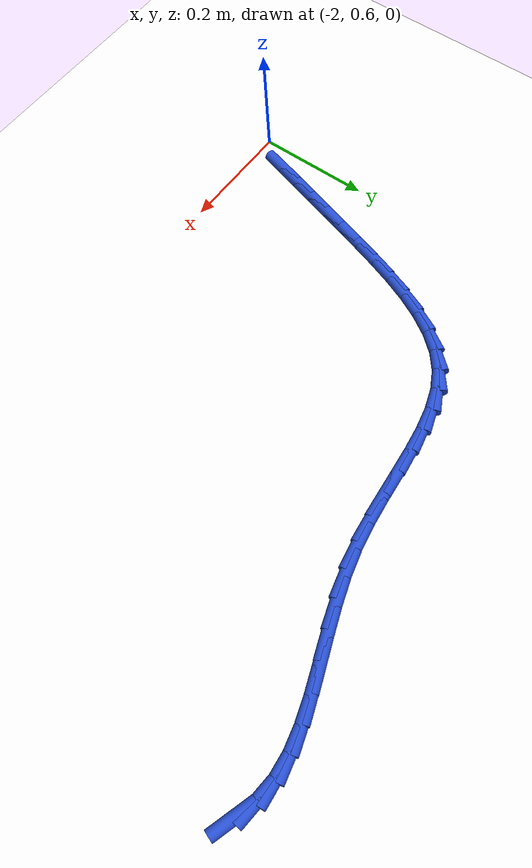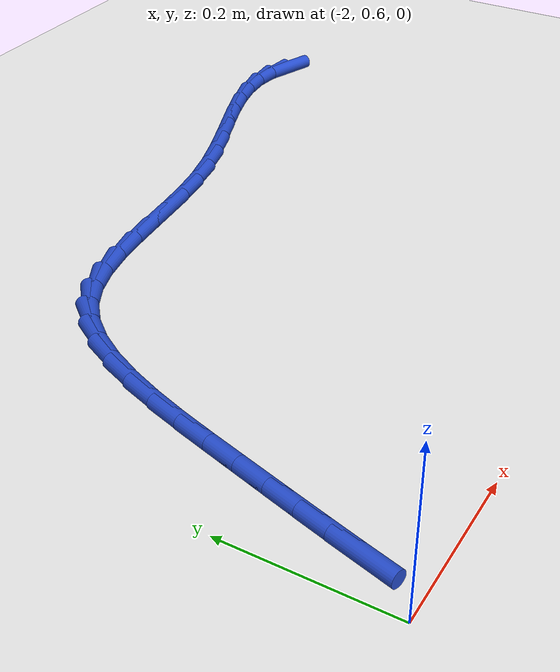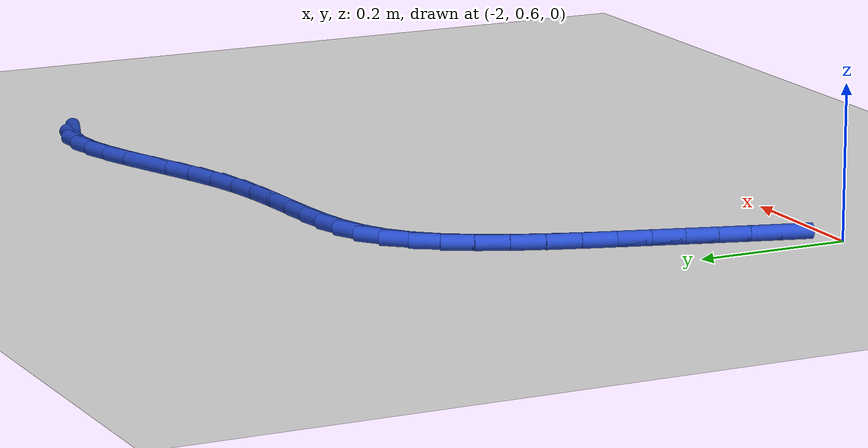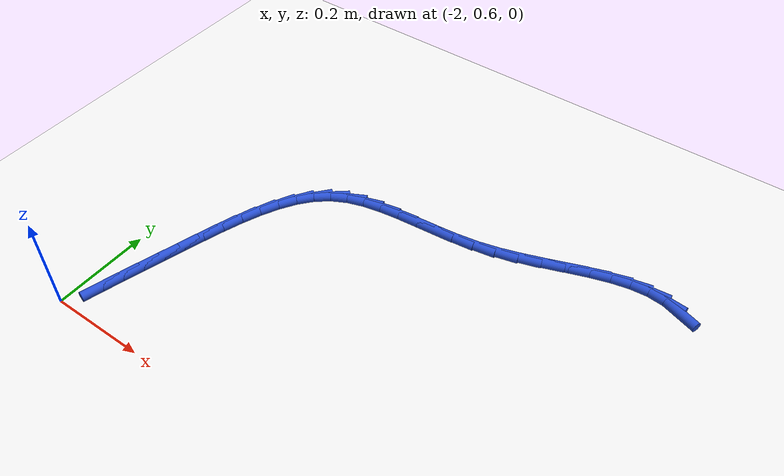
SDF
<sdf version="1.6">
 <world name="default">
  <model name="ground_plane">
   <static>1</static>
   <link name="link">
    <collision name="collision">
     <geometry><plane><normal>0 0 1</normal><size>100 100</size></plane></geometry>
     <surface><friction><ode><mu>100</mu><mu2>50</mu2></ode></friction></surface>
    </collision>
    <visual name="visual">
     <cast_shadows>0</cast_shadows>
     <geometry><plane><normal>0 0 1</normal><size>100 100</size></plane></geometry>
     <material>
      <script><uri>file://media/materials/scripts/gazebo.material</uri><name>Gazebo/WhiteGlow</name></script>
     </material>
    </visual>
   </link>
  </model>
  <model name="line">
   <link name="link_45">
    <pose>-1.0591299021761929 1.250692439277782 0.01 0 1.57 -0.33669822958910356</pose>
    <collision name="collision">
     <geometry><cylinder><radius>0.01</radius><length>0.08</length></cylinder></geometry>
    </collision>
    <visual name="visual">
     <material>
      <script><name>Gazebo/Blue</name><uri>file://media/materials/scripts/gazebo.material</uri></script>
     </material>
     <geometry><cylinder><radius>0.01</radius><length>0.08</length></cylinder></geometry>
    </visual>
   </link>
   <link name="link_46">
    <pose>-1.0915551283535128 1.2620421205153682 0.01 0 1.57 -0.10427068698773985</pose>
    <collision name="collision">
     <geometry><cylinder><radius>0.01</radius><length>0.08</length></cylinder></geometry>
    </collision>
    <visual name="visual">
     <material>
      <script><name>Gazebo/Blue</name><uri>file://media/materials/scripts/gazebo.material</uri></script>
     </material>
     <geometry><cylinder><radius>0.01</radius><length>0.08</length></cylinder></geometry>
    </visual>
   </link>
   <link name="link_47">
    <pose>-1.1257657190127353 1.2656222666183277 0.01 0 1.57 0.08414568604706085</pose>
    <collision name="collision">
     <geometry><cylinder><radius>0.01</radius><length>0.08</length></cylinder></geometry>
    </collision>
    <visual name="visual">
     <material>
      <script><name>Gazebo/Blue</name><uri>file://media/materials/scripts/gazebo.material</uri></script>
     </material>
     <geometry><cylinder><radius>0.01</radius><length>0.08</length></cylinder></geometry>
    </visual>
   </link>
   <link name="link_48">
    <pose>-1.1616599783034802 1.2625947707788077 0.01 0 1.57 0.21693622017412617</pose>
    <collision name="collision">
     <geometry><cylinder><radius>0.01</radius><length>0.08</length></cylinder></geometry>
    </collision>
    <visual name="visual">
     <material>
      <script><name>Gazebo/Blue</name><uri>file://media/materials/scripts/gazebo.material</uri></script>
     </material>
     <geometry><cylinder><radius>0.01</radius><length>0.08</length></cylinder></geometry>
    </visual>
   </link>
   <link name="link_49">
    <pose>-1.1990952887892572 1.2543438551020984 0.01 0 1.57 0.3018186956501924</pose>
    <collision name="collision">
     <geometry><cylinder><radius>0.01</radius><length>0.08</length></cylinder></geometry>
    </collision>
    <visual name="visual">
     <material>
      <script><name>Gazebo/Blue</name><uri>file://media/materials/scripts/gazebo.material</uri></script>
     </material>
     <geometry><cylinder><radius>0.01</radius><length>0.08</length></cylinder></geometry>
    </visual>
   </link>
   <link name="link_50">
    <pose>-1.2379290330335748 1.2422537416934891 0.01 0 1.57 0.34804526673265695</pose>
    <collision name="collision">
     <geometry><cylinder><radius>0.01</radius><length>0.08</length></cylinder></geometry>
    </collision>
    <visual name="visual">
     <material>
      <script><name>Gazebo/Blue</name><uri>file://media/materials/scripts/gazebo.material</uri></script>
     </material>
     <geometry><cylinder><radius>0.01</radius><length>0.08</length></cylinder></geometry>
    </visual>
   </link>
   <link name="link_51">
    <pose>-1.2780185935999442 1.2277086526582692 0.01 0 1.57 0.36227283005892513</pose>
    <collision name="collision">
     <geometry><cylinder><radius>0.01</radius><length>0.08</length></cylinder></geometry>
    </collision>
    <visual name="visual">
     <material>
      <script><name>Gazebo/Blue</name><uri>file://media/materials/scripts/gazebo.material</uri></script>
     </material>
     <geometry><cylinder><radius>0.01</radius><length>0.08</length></cylinder></geometry>
    </visual>
   </link>
   <link name="link_52">
    <pose>-1.3192213530518744 1.2120928101017288 0.01 0 1.57 0.3480716349226639</pose>
    <collision name="collision">
     <geometry><cylinder><radius>0.01</radius><length>0.08</length></cylinder></geometry>
    </collision>
    <visual name="visual">
     <material>
      <script><name>Gazebo/Blue</name><uri>file://media/materials/scripts/gazebo.material</uri></script>
     </material>
     <geometry><cylinder><radius>0.01</radius><length>0.08</length></cylinder></geometry>
    </visual>
   </link>
   <link name="link_53">
    <pose>-1.3613946939528738 1.1967904361291561 0.01 0 1.57 0.3064142870911959</pose>
    <collision name="collision">
     <geometry><cylinder><radius>0.01</radius><length>0.08</length></cylinder></geometry>
    </collision>
    <visual name="visual">
     <material>
      <script><name>Gazebo/Blue</name><uri>file://media/materials/scripts/gazebo.material</uri></script>
     </material>
     <geometry><cylinder><radius>0.01</radius><length>0.08</length></cylinder></geometry>
    </visual>
   </link>
   <link name="link_54">
    <pose>-1.4043959988664527 1.1831857528458418 0.01 0 1.57 0.23663826849893943</pose>
    <collision name="collision">
     <geometry><cylinder><radius>0.01</radius><length>0.08</length></cylinder></geometry>
    </collision>
    <visual name="visual">
     <material>
      <script><name>Gazebo/Blue</name><uri>file://media/materials/scripts/gazebo.material</uri></script>
     </material>
     <geometry><cylinder><radius>0.01</radius><length>0.08</length></cylinder></geometry>
    </visual>
   </link>
   <link name="link_55">
    <pose>-1.4480807611923703 1.1726508856167719 0.01 0 1.57 0.1578664580977036</pose>
    <collision name="collision">
     <geometry><cylinder><radius>0.01</radius><length>0.08</length></cylinder></geometry>
    </collision>
    <visual name="visual">
     <material>
      <script><name>Gazebo/Blue</name><uri>file://media/materials/scripts/gazebo.material</uri></script>
     </material>
     <geometry><cylinder><radius>0.01</radius><length>0.08</length></cylinder></geometry>
    </visual>
   </link>
   <link name="link_56">
    <pose>-1.4921601531029245 1.1656338385351133 0.01 0 1.57 0.10455293039260276</pose>
    <collision name="collision">
     <geometry><cylinder><radius>0.01</radius><length>0.08</length></cylinder></geometry>
    </collision>
    <visual name="visual">
     <material>
      <script><name>Gazebo/Blue</name><uri>file://media/materials/scripts/gazebo.material</uri></script>
     </material>
     <geometry><cylinder><radius>0.01</radius><length>0.08</length></cylinder></geometry>
    </visual>
   </link>
   <link name="link_57">
    <pose>-1.5361017486469897 1.1610228021336972 0.01 0 1.57 0.07999688228701433</pose>
    <collision name="collision">
     <geometry><cylinder><radius>0.01</radius><length>0.08</length></cylinder></geometry>
    </collision>
    <visual name="visual">
     <material>
      <script><name>Gazebo/Blue</name><uri>file://media/materials/scripts/gazebo.material</uri></script>
     </material>
     <geometry><cylinder><radius>0.01</radius><length>0.08</length></cylinder></geometry>
    </visual>
   </link>
   <link name="link_58">
    <pose>-1.579349655328273 1.15755570537991 0.01 0 1.57 0.08515951661189157</pose>
    <collision name="collision">
     <geometry><cylinder><radius>0.01</radius><length>0.08</length></cylinder></geometry>
    </collision>
    <visual name="visual">
     <material>
      <script><name>Gazebo/Blue</name><uri>file://media/materials/scripts/gazebo.material</uri></script>
     </material>
     <geometry><cylinder><radius>0.01</radius><length>0.08</length></cylinder></geometry>
    </visual>
   </link>
   <link name="link_59">
    <pose>-1.6213479806504802 1.153970477241138 0.01 0 1.57 0.12291733806011056</pose>
    <collision name="collision">
     <geometry><cylinder><radius>0.01</radius><length>0.08</length></cylinder></geometry>
    </collision>
    <visual name="visual">
     <material>
      <script><name>Gazebo/Blue</name><uri>file://media/materials/scripts/gazebo.material</uri></script>
     </material>
     <geometry><cylinder><radius>0.01</radius><length>0.08</length></cylinder></geometry>
    </visual>
   </link>
   <link name="link_60">
    <pose>-1.6615408321173193 1.1490050466847674 0.01 0 1.57 0.19844775259243733</pose>
    <collision name="collision">
     <geometry><cylinder><radius>0.01</radius><length>0.08</length></cylinder></geometry>
    </collision>
    <visual name="visual">
     <material>
      <script><name>Gazebo/Blue</name><uri>file://media/materials/scripts/gazebo.material</uri></script>
     </material>
     <geometry><cylinder><radius>0.01</radius><length>0.08</length></cylinder></geometry>
    </visual>
   </link>
   <link name="link_61">
    <pose>-1.6993723172324957 1.1413973426781845 0.01 0 1.57 0.31849839016324694</pose>
    <collision name="collision">
     <geometry><cylinder><radius>0.01</radius><length>0.08</length></cylinder></geometry>
    </collision>
    <visual name="visual">
     <material>
      <script><name>Gazebo/Blue</name><uri>file://media/materials/scripts/gazebo.material</uri></script>
     </material>
     <geometry><cylinder><radius>0.01</radius><length>0.08</length></cylinder></geometry>
    </visual>
   </link>
   <link name="link_62">
    <pose>-1.7342865434997168 1.1298852941887751 0.01 0 1.57 0.48772337726952136</pose>
    <collision name="collision">
     <geometry><cylinder><radius>0.01</radius><length>0.08</length></cylinder></geometry>
    </collision>
    <visual name="visual">
     <material>
      <script><name>Gazebo/Blue</name><uri>file://media/materials/scripts/gazebo.material</uri></script>
     </material>
     <geometry><cylinder><radius>0.01</radius><length>0.08</length></cylinder></geometry>
    </visual>
   </link>
   <link name="link_63">
    <pose>-1.7657276184226895 1.1132068301839255 0.01 0 1.57 0.6924582618871856</pose>
    <collision name="collision">
     <geometry><cylinder><radius>0.01</radius><length>0.08</length></cylinder></geometry>
    </collision>
    <visual name="visual">
     <material>
      <script><name>Gazebo/Blue</name><uri>file://media/materials/scripts/gazebo.material</uri></script>
     </material>
     <geometry><cylinder><radius>0.01</radius><length>0.08</length></cylinder></geometry>
    </visual>
   </link>
   <link name="link_64">
    <pose>-1.793264834079961 1.0903653350124758 0.01 0 1.57 0.873751924584222</pose>
    <collision name="collision">
     <geometry><cylinder><radius>0.01</radius><length>0.08</length></cylinder></geometry>
    </collision>
    <visual name="visual">
     <material>
      <script><name>Gazebo/Blue</name><uri>file://media/materials/scripts/gazebo.material</uri></script>
     </material>
     <geometry><cylinder><radius>0.01</radius><length>0.08</length></cylinder></geometry>
    </visual>
   </link>
   <link name="link_65">
    <pose>-1.8171577487726231 1.0618279107667905 0.01 0 1.57 1.0131812327672665</pose>
    <collision name="collision">
     <geometry><cylinder><radius>0.01</radius><length>0.08</length></cylinder></geometry>
    </collision>
    <visual name="visual">
     <material>
      <script><name>Gazebo/Blue</name><uri>file://media/materials/scripts/gazebo.material</uri></script>
     </material>
     <geometry><cylinder><radius>0.01</radius><length>0.08</length></cylinder></geometry>
    </visual>
   </link>
   <link name="link_66">
    <pose>-1.8379025482146976 1.0285634307857414 0.01 0 1.57 1.1162224537519967</pose>
    <collision name="collision">
     <geometry><cylinder><radius>0.01</radius><length>0.08</length></cylinder></geometry>
    </collision>
    <visual name="visual">
     <material>
      <script><name>Gazebo/Blue</name><uri>file://media/materials/scripts/gazebo.material</uri></script>
     </material>
     <geometry><cylinder><radius>0.01</radius><length>0.08</length></cylinder></geometry>
    </visual>
   </link>
   <link name="link_67">
    <pose>-1.8559956288143367 0.9915412151876153 0.01 0 1.57 1.1899975276524515</pose>
    <collision name="collision">
     <geometry><cylinder><radius>0.01</radius><length>0.08</length></cylinder></geometry>
    </collision>
    <visual name="visual">
     <material>
      <script><name>Gazebo/Blue</name><uri>file://media/materials/scripts/gazebo.material</uri></script>
     </material>
     <geometry><cylinder><radius>0.01</radius><length>0.08</length></cylinder></geometry>
    </visual>
   </link>
   <link name="link_68">
    <pose>-1.8719333869796921 0.951730584090697 0.01 0 1.57 1.2403746727568596</pose>
    <collision name="collision">
     <geometry><cylinder><radius>0.01</radius><length>0.08</length></cylinder></geometry>
    </collision>
    <visual name="visual">
     <material>
      <script><name>Gazebo/Blue</name><uri>file://media/materials/scripts/gazebo.material</uri></script>
     </material>
     <geometry><cylinder><radius>0.01</radius><length>0.08</length></cylinder></geometry>
    </visual>
   </link>
   <link name="link_69">
    <pose>-1.8862122191189152 0.9101008576132709 0.01 0 1.57 1.2713152108671992</pose>
    <collision name="collision">
     <geometry><cylinder><radius>0.01</radius><length>0.08</length></cylinder></geometry>
    </collision>
    <visual name="visual">
     <material>
      <script><name>Gazebo/Blue</name><uri>file://media/materials/scripts/gazebo.material</uri></script>
     </material>
     <geometry><cylinder><radius>0.01</radius><length>0.08</length></cylinder></geometry>
    </visual>
   </link>
   <link name="link_70">
    <pose>-1.8993285216401588 0.867621355873624 0.01 0 1.57 1.284934702680093</pose>
    <collision name="collision">
     <geometry><cylinder><radius>0.01</radius><length>0.08</length></cylinder></geometry>
    </collision>
    <visual name="visual">
     <material>
      <script><name>Gazebo/Blue</name><uri>file://media/materials/scripts/gazebo.material</uri></script>
     </material>
     <geometry><cylinder><radius>0.01</radius><length>0.08</length></cylinder></geometry>
    </visual>
   </link>
   <link name="link_71">
    <pose>-1.9117786310994853 0.825261282123647 0.01 0 1.57 1.2858170743674202</pose>
    <collision name="collision">
     <geometry><cylinder><radius>0.01</radius><length>0.08</length></cylinder></geometry>
    </collision>
    <visual name="visual">
     <material>
      <script><name>Gazebo/Blue</name><uri>file://media/materials/scripts/gazebo.material</uri></script>
     </material>
     <geometry><cylinder><radius>0.01</radius><length>0.08</length></cylinder></geometry>
    </visual>
   </link>
   <link name="link_72">
    <pose>-1.9239382383706742 0.7837542684612345 0.01 0 1.57 1.28666281614848</pose>
    <collision name="collision">
     <geometry><cylinder><radius>0.01</radius><length>0.08</length></cylinder></geometry>
    </collision>
    <visual name="visual">
     <material>
      <script><name>Gazebo/Blue</name><uri>file://media/materials/scripts/gazebo.material</uri></script>
     </material>
     <geometry><cylinder><radius>0.01</radius><length>0.08</length></cylinder></geometry>
    </visual>
   </link>
   <link name="link_73">
    <pose>-1.935809415068716 0.7431044229906855 0.01 0 1.57 1.2900828143448344</pose>
    <collision name="collision">
     <geometry><cylinder><radius>0.01</radius><length>0.08</length></cylinder></geometry>
    </collision>
    <visual name="visual">
     <material>
      <script><name>Gazebo/Blue</name><uri>file://media/materials/scripts/gazebo.material</uri></script>
     </material>
     <geometry><cylinder><radius>0.01</radius><length>0.08</length></cylinder></geometry>
    </visual>
   </link>
   <link name="link_74">
    <pose>-1.9473221276702646 0.7031750622825623 0.01 0 1.57 1.2961984678249916</pose>
    <collision name="collision">
     <geometry><cylinder><radius>0.01</radius><length>0.08</length></cylinder></geometry>
    </collision>
    <visual name="visual">
     <material>
      <script><name>Gazebo/Blue</name><uri>file://media/materials/scripts/gazebo.material</uri></script>
     </material>
     <geometry><cylinder><radius>0.01</radius><length>0.08</length></cylinder></geometry>
    </visual>
   </link>
   <link name="link_75">
    <pose>-1.958406342651973 0.6638295029074285 0.01 0 1.57 1.3050942781145092</pose>
    <collision name="collision">
     <geometry><cylinder><radius>0.01</radius><length>0.08</length></cylinder></geometry>
    </collision>
    <visual name="visual">
     <material>
      <script><name>Gazebo/Blue</name><uri>file://media/materials/scripts/gazebo.material</uri></script>
     </material>
     <geometry><cylinder><radius>0.01</radius><length>0.08</length></cylinder></geometry>
    </visual>
   </link>
  </model>
 </world>
</sdf>
